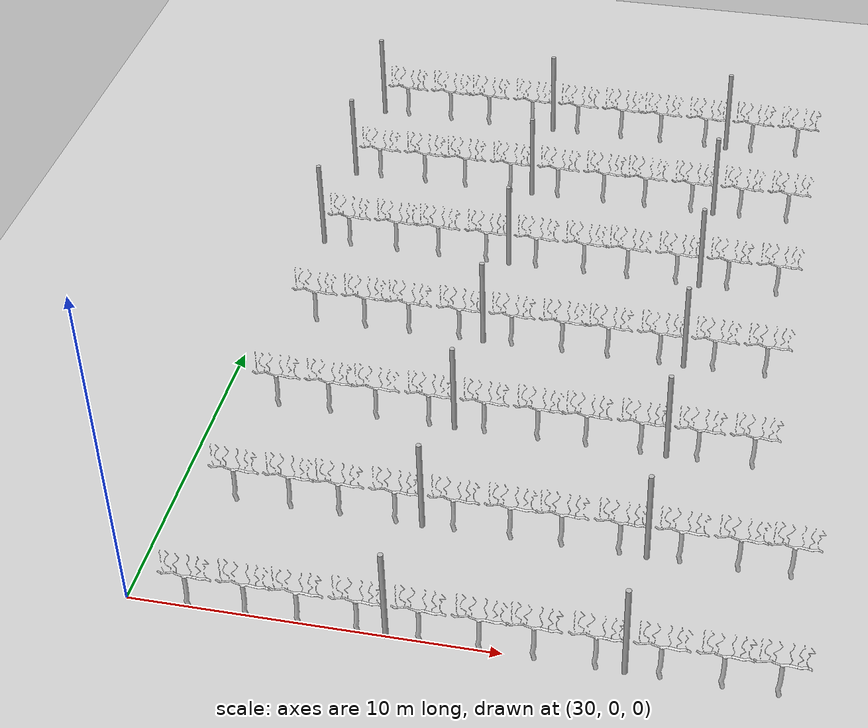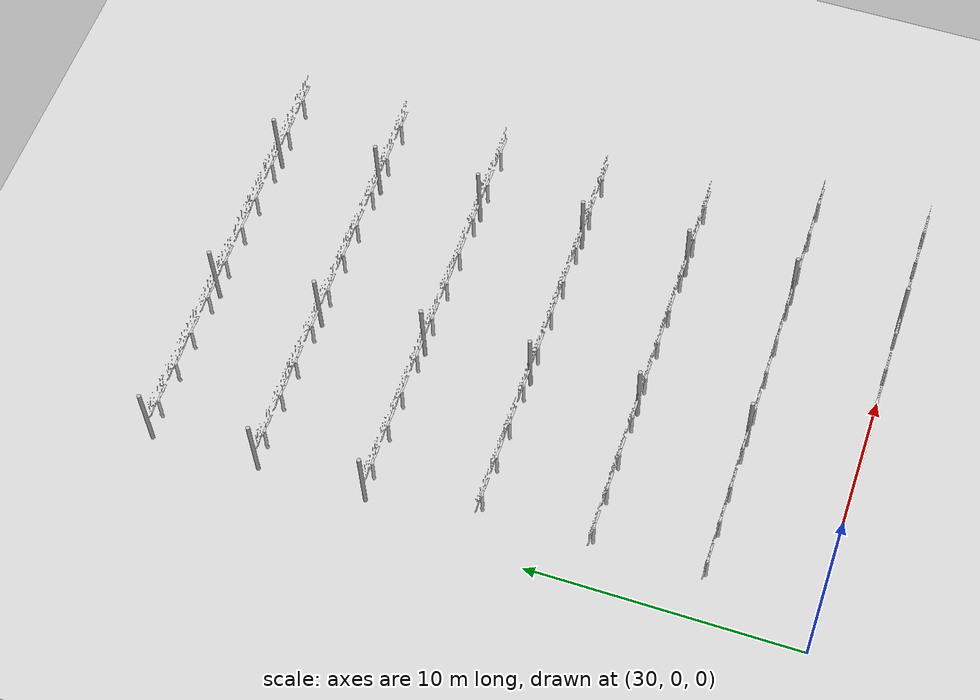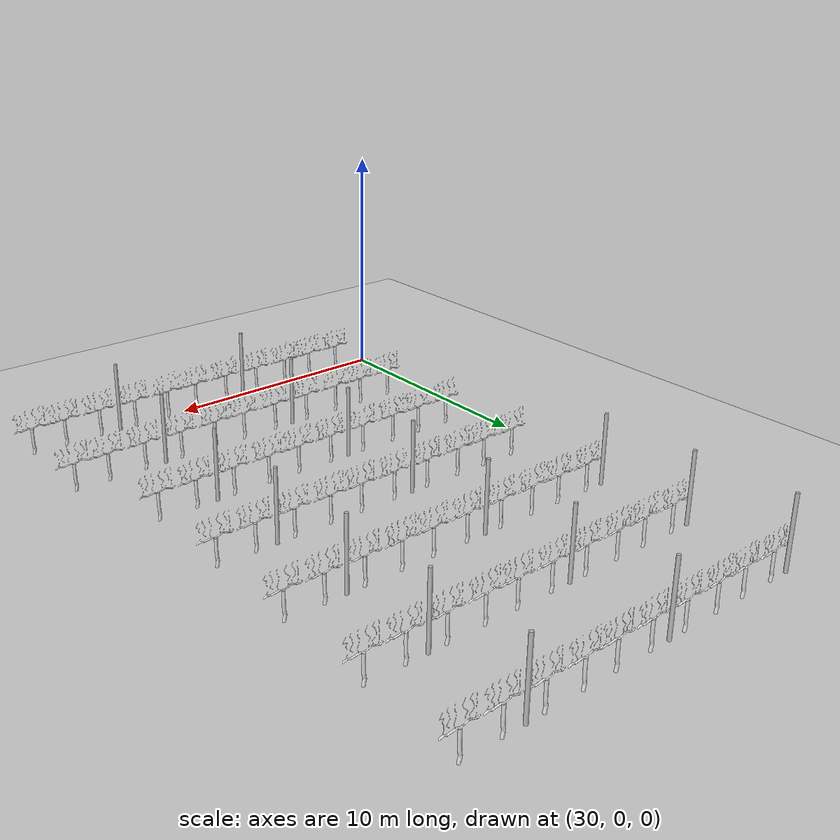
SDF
<sdf version="1.7">
 <world name="default">
  <model name="ground_plane">
   <static>true</static>
   <link name="link">
    <collision name="collision">
     <geometry><plane><normal>0 0 1</normal><size>100 100</size></plane></geometry>
    </collision>
    <visual name="visual"><geometry><plane><normal>0 0 1</normal><size>100 100</size></plane></geometry></visual>
   </link>
  </model>
  <model name="vinya_1_palo_6_fila_1">
   <static>true</static>
   <pose>31.699999999999992 0.0 0 0 0 0</pose>
   <link name="link">
    <collision name="collision">
     <geometry><mesh><uri>file://models/vinya/meshes/vinya.dae</uri></mesh></geometry>
    </collision>
    <visual name="visual">
     <geometry><mesh><uri>file://models/vinya/meshes/vinya.dae</uri></mesh></geometry>
    </visual>
   </link>
  </model>
  <model name="vinya_2_palo_6_fila_1">
   <static>true</static>
   <pose>33.25999999999999 0.0 0 0 0 0</pose>
   <link name="link">
    <collision name="collision">
     <geometry><mesh><uri>file://models/vinya/meshes/vinya.dae</uri></mesh></geometry>
    </collision>
    <visual name="visual">
     <geometry><mesh><uri>file://models/vinya/meshes/vinya.dae</uri></mesh></geometry>
    </visual>
   </link>
  </model>
  <model name="vinya_3_palo_6_fila_1">
   <static>true</static>
   <pose>34.65999999999999 0.0 0 0 0 0</pose>
   <link name="link">
    <collision name="collision">
     <geometry><mesh><uri>file://models/vinya/meshes/vinya.dae</uri></mesh></geometry>
    </collision>
    <visual name="visual">
     <geometry><mesh><uri>file://models/vinya/meshes/vinya.dae</uri></mesh></geometry>
    </visual>
   </link>
  </model>
  <model name="vinya_4_palo_6_fila_1">
   <static>true</static>
   <pose>36.23499999999999 0.0 0 0 0 0</pose>
   <link name="link">
    <collision name="collision">
     <geometry><mesh><uri>file://models/vinya/meshes/vinya.dae</uri></mesh></geometry>
    </collision>
    <visual name="visual">
     <geometry><mesh><uri>file://models/vinya/meshes/vinya.dae</uri></mesh></geometry>
    </visual>
   </link>
  </model>
  <model name="unit_cylinder_fila_1_palo_7">
   <static>true</static>
   <pose>36.959999999999994 0.0 1.5 0 0 0</pose>
   <link name="link">
    <collision name="collision">
     <geometry><cylinder><radius>0.075</radius><length>3</length></cylinder></geometry>
    </collision>
    <visual name="visual">
     <geometry><cylinder><radius>0.075</radius><length>3</length></cylinder></geometry>
    </visual>
   </link>
  </model>
  <model name="vinya_1_palo_7_fila_1">
   <static>true</static>
   <pose>37.85999999999999 0.0 0 0 0 0</pose>
   <link name="link">
    <collision name="collision">
     <geometry><mesh><uri>file://models/vinya/meshes/vinya.dae</uri></mesh></geometry>
    </collision>
    <visual name="visual">
     <geometry><mesh><uri>file://models/vinya/meshes/vinya.dae</uri></mesh></geometry>
    </visual>
   </link>
  </model>
  <model name="vinya_2_palo_7_fila_1">
   <static>true</static>
   <pose>39.419999999999995 0.0 0 0 0 0</pose>
   <link name="link">
    <collision name="collision">
     <geometry><mesh><uri>file://models/vinya/meshes/vinya.dae</uri></mesh></geometry>
    </collision>
    <visual name="visual">
     <geometry><mesh><uri>file://models/vinya/meshes/vinya.dae</uri></mesh></geometry>
    </visual>
   </link>
  </model>
  <model name="vinya_3_palo_7_fila_1">
   <static>true</static>
   <pose>40.81999999999999 0.0 0 0 0 0</pose>
   <link name="link">
    <collision name="collision">
     <geometry><mesh><uri>file://models/vinya/meshes/vinya.dae</uri></mesh></geometry>
    </collision>
    <visual name="visual">
     <geometry><mesh><uri>file://models/vinya/meshes/vinya.dae</uri></mesh></geometry>
    </visual>
   </link>
  </model>
  <model name="vinya_4_palo_7_fila_1">
   <static>true</static>
   <pose>42.394999999999996 0.0 0 0 0 0</pose>
   <link name="link">
    <collision name="collision">
     <geometry><mesh><uri>file://models/vinya/meshes/vinya.dae</uri></mesh></geometry>
    </collision>
    <visual name="visual">
     <geometry><mesh><uri>file://models/vinya/meshes/vinya.dae</uri></mesh></geometry>
    </visual>
   </link>
  </model>
  <model name="unit_cylinder_fila_1_palo_8">
   <static>true</static>
   <pose>43.12 0.0 1.5 0 0 0</pose>
   <link name="link">
    <collision name="collision">
     <geometry><cylinder><radius>0.075</radius><length>3</length></cylinder></geometry>
    </collision>
    <visual name="visual">
     <geometry><cylinder><radius>0.075</radius><length>3</length></cylinder></geometry>
    </visual>
   </link>
  </model>
  <model name="vinya_1_palo_8_fila_1">
   <static>true</static>
   <pose>44.019999999999996 0.0 0 0 0 0</pose>
   <link name="link">
    <collision name="collision">
     <geometry><mesh><uri>file://models/vinya/meshes/vinya.dae</uri></mesh></geometry>
    </collision>
    <visual name="visual">
     <geometry><mesh><uri>file://models/vinya/meshes/vinya.dae</uri></mesh></geometry>
    </visual>
   </link>
  </model>
  <model name="vinya_2_palo_8_fila_1">
   <static>true</static>
   <pose>45.58 0.0 0 0 0 0</pose>
   <link name="link">
    <collision name="collision">
     <geometry><mesh><uri>file://models/vinya/meshes/vinya.dae</uri></mesh></geometry>
    </collision>
    <visual name="visual">
     <geometry><mesh><uri>file://models/vinya/meshes/vinya.dae</uri></mesh></geometry>
    </visual>
   </link>
  </model>
  <model name="vinya_3_palo_8_fila_1">
   <static>true</static>
   <pose>46.98 0.0 0 0 0 0</pose>
   <link name="link">
    <collision name="collision">
     <geometry><mesh><uri>file://models/vinya/meshes/vinya.dae</uri></mesh></geometry>
    </collision>
    <visual name="visual">
     <geometry><mesh><uri>file://models/vinya/meshes/vinya.dae</uri></mesh></geometry>
    </visual>
   </link>
  </model>
  <model name="vinya_1_palo_6_fila_2">
   <static>true</static>
   <pose>31.699999999999992 4.0 0 0 0 0</pose>
   <link name="link">
    <collision name="collision">
     <geometry><mesh><uri>file://models/vinya/meshes/vinya.dae</uri></mesh></geometry>
    </collision>
    <visual name="visual">
     <geometry><mesh><uri>file://models/vinya/meshes/vinya.dae</uri></mesh></geometry>
    </visual>
   </link>
  </model>
  <model name="vinya_2_palo_6_fila_2">
   <static>true</static>
   <pose>33.25999999999999 4.0 0 0 0 0</pose>
   <link name="link">
    <collision name="collision">
     <geometry><mesh><uri>file://models/vinya/meshes/vinya.dae</uri></mesh></geometry>
    </collision>
    <visual name="visual">
     <geometry><mesh><uri>file://models/vinya/meshes/vinya.dae</uri></mesh></geometry>
    </visual>
   </link>
  </model>
  <model name="vinya_3_palo_6_fila_2">
   <static>true</static>
   <pose>34.65999999999999 4.0 0 0 0 0</pose>
   <link name="link">
    <collision name="collision">
     <geometry><mesh><uri>file://models/vinya/meshes/vinya.dae</uri></mesh></geometry>
    </collision>
    <visual name="visual">
     <geometry><mesh><uri>file://models/vinya/meshes/vinya.dae</uri></mesh></geometry>
    </visual>
   </link>
  </model>
  <model name="vinya_4_palo_6_fila_2">
   <static>true</static>
   <pose>36.23499999999999 4.0 0 0 0 0</pose>
   <link name="link">
    <collision name="collision">
     <geometry><mesh><uri>file://models/vinya/meshes/vinya.dae</uri></mesh></geometry>
    </collision>
    <visual name="visual">
     <geometry><mesh><uri>file://models/vinya/meshes/vinya.dae</uri></mesh></geometry>
    </visual>
   </link>
  </model>
  <model name="unit_cylinder_fila_2_palo_7">
   <static>true</static>
   <pose>36.959999999999994 4.0 1.5 0 0 0</pose>
   <link name="link">
    <collision name="collision">
     <geometry><cylinder><radius>0.075</radius><length>3</length></cylinder></geometry>
    </collision>
    <visual name="visual">
     <geometry><cylinder><radius>0.075</radius><length>3</length></cylinder></geometry>
    </visual>
   </link>
  </model>
  <model name="vinya_1_palo_7_fila_2">
   <static>true</static>
   <pose>37.85999999999999 4.0 0 0 0 0</pose>
   <link name="link">
    <collision name="collision">
     <geometry><mesh><uri>file://models/vinya/meshes/vinya.dae</uri></mesh></geometry>
    </collision>
    <visual name="visual">
     <geometry><mesh><uri>file://models/vinya/meshes/vinya.dae</uri></mesh></geometry>
    </visual>
   </link>
  </model>
  <model name="vinya_2_palo_7_fila_2">
   <static>true</static>
   <pose>39.419999999999995 4.0 0 0 0 0</pose>
   <link name="link">
    <collision name="collision">
     <geometry><mesh><uri>file://models/vinya/meshes/vinya.dae</uri></mesh></geometry>
    </collision>
    <visual name="visual">
     <geometry><mesh><uri>file://models/vinya/meshes/vinya.dae</uri></mesh></geometry>
    </visual>
   </link>
  </model>
  <model name="vinya_3_palo_7_fila_2">
   <static>true</static>
   <pose>40.81999999999999 4.0 0 0 0 0</pose>
   <link name="link">
    <collision name="collision">
     <geometry><mesh><uri>file://models/vinya/meshes/vinya.dae</uri></mesh></geometry>
    </collision>
    <visual name="visual">
     <geometry><mesh><uri>file://models/vinya/meshes/vinya.dae</uri></mesh></geometry>
    </visual>
   </link>
  </model>
  <model name="vinya_4_palo_7_fila_2">
   <static>true</static>
   <pose>42.394999999999996 4.0 0 0 0 0</pose>
   <link name="link">
    <collision name="collision">
     <geometry><mesh><uri>file://models/vinya/meshes/vinya.dae</uri></mesh></geometry>
    </collision>
    <visual name="visual">
     <geometry><mesh><uri>file://models/vinya/meshes/vinya.dae</uri></mesh></geometry>
    </visual>
   </link>
  </model>
  <model name="unit_cylinder_fila_2_palo_8">
   <static>true</static>
   <pose>43.12 4.0 1.5 0 0 0</pose>
   <link name="link">
    <collision name="collision">
     <geometry><cylinder><radius>0.075</radius><length>3</length></cylinder></geometry>
    </collision>
    <visual name="visual">
     <geometry><cylinder><radius>0.075</radius><length>3</length></cylinder></geometry>
    </visual>
   </link>
  </model>
  <model name="vinya_1_palo_8_fila_2">
   <static>true</static>
   <pose>44.019999999999996 4.0 0 0 0 0</pose>
   <link name="link">
    <collision name="collision">
     <geometry><mesh><uri>file://models/vinya/meshes/vinya.dae</uri></mesh></geometry>
    </collision>
    <visual name="visual">
     <geometry><mesh><uri>file://models/vinya/meshes/vinya.dae</uri></mesh></geometry>
    </visual>
   </link>
  </model>
  <model name="vinya_2_palo_8_fila_2">
   <static>true</static>
   <pose>45.58 4.0 0 0 0 0</pose>
   <link name="link">
    <collision name="collision">
     <geometry><mesh><uri>file://models/vinya/meshes/vinya.dae</uri></mesh></geometry>
    </collision>
    <visual name="visual">
     <geometry><mesh><uri>file://models/vinya/meshes/vinya.dae</uri></mesh></geometry>
    </visual>
   </link>
  </model>
  <model name="vinya_3_palo_8_fila_2">
   <static>true</static>
   <pose>46.98 4.0 0 0 0 0</pose>
   <link name="link">
    <collision name="collision">
     <geometry><mesh><uri>file://models/vinya/meshes/vinya.dae</uri></mesh></geometry>
    </collision>
    <visual name="visual">
     <geometry><mesh><uri>file://models/vinya/meshes/vinya.dae</uri></mesh></geometry>
    </visual>
   </link>
  </model>
  <model name="vinya_1_palo_6_fila_3">
   <static>true</static>
   <pose>31.699999999999992 8.0 0 0 0 0</pose>
   <link name="link">
    <collision name="collision">
     <geometry><mesh><uri>file://models/vinya/meshes/vinya.dae</uri></mesh></geometry>
    </collision>
    <visual name="visual">
     <geometry><mesh><uri>file://models/vinya/meshes/vinya.dae</uri></mesh></geometry>
    </visual>
   </link>
  </model>
  <model name="vinya_2_palo_6_fila_3">
   <static>true</static>
   <pose>33.25999999999999 8.0 0 0 0 0</pose>
   <link name="link">
    <collision name="collision">
     <geometry><mesh><uri>file://models/vinya/meshes/vinya.dae</uri></mesh></geometry>
    </collision>
    <visual name="visual">
     <geometry><mesh><uri>file://models/vinya/meshes/vinya.dae</uri></mesh></geometry>
    </visual>
   </link>
  </model>
  <model name="vinya_3_palo_6_fila_3">
   <static>true</static>
   <pose>34.65999999999999 8.0 0 0 0 0</pose>
   <link name="link">
    <collision name="collision">
     <geometry><mesh><uri>file://models/vinya/meshes/vinya.dae</uri></mesh></geometry>
    </collision>
    <visual name="visual">
     <geometry><mesh><uri>file://models/vinya/meshes/vinya.dae</uri></mesh></geometry>
    </visual>
   </link>
  </model>
  <model name="vinya_4_palo_6_fila_3">
   <static>true</static>
   <pose>36.23499999999999 8.0 0 0 0 0</pose>
   <link name="link">
    <collision name="collision">
     <geometry><mesh><uri>file://models/vinya/meshes/vinya.dae</uri></mesh></geometry>
    </collision>
    <visual name="visual">
     <geometry><mesh><uri>file://models/vinya/meshes/vinya.dae</uri></mesh></geometry>
    </visual>
   </link>
  </model>
  <model name="unit_cylinder_fila_3_palo_7">
   <static>true</static>
   <pose>36.959999999999994 8.0 1.5 0 0 0</pose>
   <link name="link">
    <collision name="collision">
     <geometry><cylinder><radius>0.075</radius><length>3</length></cylinder></geometry>
    </collision>
    <visual name="visual">
     <geometry><cylinder><radius>0.075</radius><length>3</length></cylinder></geometry>
    </visual>
   </link>
  </model>
  <model name="vinya_1_palo_7_fila_3">
   <static>true</static>
   <pose>37.85999999999999 8.0 0 0 0 0</pose>
   <link name="link">
    <collision name="collision">
     <geometry><mesh><uri>file://models/vinya/meshes/vinya.dae</uri></mesh></geometry>
    </collision>
    <visual name="visual">
     <geometry><mesh><uri>file://models/vinya/meshes/vinya.dae</uri></mesh></geometry>
    </visual>
   </link>
  </model>
  <model name="vinya_2_palo_7_fila_3">
   <static>true</static>
   <pose>39.419999999999995 8.0 0 0 0 0</pose>
   <link name="link">
    <collision name="collision">
     <geometry><mesh><uri>file://models/vinya/meshes/vinya.dae</uri></mesh></geometry>
    </collision>
    <visual name="visual">
     <geometry><mesh><uri>file://models/vinya/meshes/vinya.dae</uri></mesh></geometry>
    </visual>
   </link>
  </model>
  <model name="vinya_3_palo_7_fila_3">
   <static>true</static>
   <pose>40.81999999999999 8.0 0 0 0 0</pose>
   <link name="link">
    <collision name="collision">
     <geometry><mesh><uri>file://models/vinya/meshes/vinya.dae</uri></mesh></geometry>
    </collision>
    <visual name="visual">
     <geometry><mesh><uri>file://models/vinya/meshes/vinya.dae</uri></mesh></geometry>
    </visual>
   </link>
  </model>
  <model name="vinya_4_palo_7_fila_3">
   <static>true</static>
   <pose>42.394999999999996 8.0 0 0 0 0</pose>
   <link name="link">
    <collision name="collision">
     <geometry><mesh><uri>file://models/vinya/meshes/vinya.dae</uri></mesh></geometry>
    </collision>
    <visual name="visual">
     <geometry><mesh><uri>file://models/vinya/meshes/vinya.dae</uri></mesh></geometry>
    </visual>
   </link>
  </model>
  <model name="unit_cylinder_fila_3_palo_8">
   <static>true</static>
   <pose>43.12 8.0 1.5 0 0 0</pose>
   <link name="link">
    <collision name="collision">
     <geometry><cylinder><radius>0.075</radius><length>3</length></cylinder></geometry>
    </collision>
    <visual name="visual">
     <geometry><cylinder><radius>0.075</radius><length>3</length></cylinder></geometry>
    </visual>
   </link>
  </model>
  <model name="vinya_1_palo_8_fila_3">
   <static>true</static>
   <pose>44.019999999999996 8.0 0 0 0 0</pose>
   <link name="link">
    <collision name="collision">
     <geometry><mesh><uri>file://models/vinya/meshes/vinya.dae</uri></mesh></geometry>
    </collision>
    <visual name="visual">
     <geometry><mesh><uri>file://models/vinya/meshes/vinya.dae</uri></mesh></geometry>
    </visual>
   </link>
  </model>
  <model name="vinya_2_palo_8_fila_3">
   <static>true</static>
   <pose>45.58 8.0 0 0 0 0</pose>
   <link name="link">
    <collision name="collision">
     <geometry><mesh><uri>file://models/vinya/meshes/vinya.dae</uri></mesh></geometry>
    </collision>
    <visual name="visual">
     <geometry><mesh><uri>file://models/vinya/meshes/vinya.dae</uri></mesh></geometry>
    </visual>
   </link>
  </model>
  <model name="vinya_1_palo_6_fila_4">
   <static>true</static>
   <pose>31.699999999999992 12.0 0 0 0 0</pose>
   <link name="link">
    <collision name="collision">
     <geometry><mesh><uri>file://models/vinya/meshes/vinya.dae</uri></mesh></geometry>
    </collision>
    <visual name="visual">
     <geometry><mesh><uri>file://models/vinya/meshes/vinya.dae</uri></mesh></geometry>
    </visual>
   </link>
  </model>
  <model name="vinya_2_palo_6_fila_4">
   <static>true</static>
   <pose>33.25999999999999 12.0 0 0 0 0</pose>
   <link name="link">
    <collision name="collision">
     <geometry><mesh><uri>file://models/vinya/meshes/vinya.dae</uri></mesh></geometry>
    </collision>
    <visual name="visual">
     <geometry><mesh><uri>file://models/vinya/meshes/vinya.dae</uri></mesh></geometry>
    </visual>
   </link>
  </model>
  <model name="vinya_3_palo_6_fila_4">
   <static>true</static>
   <pose>34.65999999999999 12.0 0 0 0 0</pose>
   <link name="link">
    <collision name="collision">
     <geometry><mesh><uri>file://models/vinya/meshes/vinya.dae</uri></mesh></geometry>
    </collision>
    <visual name="visual">
     <geometry><mesh><uri>file://models/vinya/meshes/vinya.dae</uri></mesh></geometry>
    </visual>
   </link>
  </model>
  <model name="vinya_4_palo_6_fila_4">
   <static>true</static>
   <pose>36.23499999999999 12.0 0 0 0 0</pose>
   <link name="link">
    <collision name="collision">
     <geometry><mesh><uri>file://models/vinya/meshes/vinya.dae</uri></mesh></geometry>
    </collision>
    <visual name="visual">
     <geometry><mesh><uri>file://models/vinya/meshes/vinya.dae</uri></mesh></geometry>
    </visual>
   </link>
  </model>
  <model name="unit_cylinder_fila_4_palo_7">
   <static>true</static>
   <pose>36.959999999999994 12.0 1.5 0 0 0</pose>
   <link name="link">
    <collision name="collision">
     <geometry><cylinder><radius>0.075</radius><length>3</length></cylinder></geometry>
    </collision>
    <visual name="visual">
     <geometry><cylinder><radius>0.075</radius><length>3</length></cylinder></geometry>
    </visual>
   </link>
  </model>
  <model name="vinya_1_palo_7_fila_4">
   <static>true</static>
   <pose>37.85999999999999 12.0 0 0 0 0</pose>
   <link name="link">
    <collision name="collision">
     <geometry><mesh><uri>file://models/vinya/meshes/vinya.dae</uri></mesh></geometry>
    </collision>
    <visual name="visual">
     <geometry><mesh><uri>file://models/vinya/meshes/vinya.dae</uri></mesh></geometry>
    </visual>
   </link>
  </model>
  <model name="vinya_2_palo_7_fila_4">
   <static>true</static>
   <pose>39.419999999999995 12.0 0 0 0 0</pose>
   <link name="link">
    <collision name="collision">
     <geometry><mesh><uri>file://models/vinya/meshes/vinya.dae</uri></mesh></geometry>
    </collision>
    <visual name="visual">
     <geometry><mesh><uri>file://models/vinya/meshes/vinya.dae</uri></mesh></geometry>
    </visual>
   </link>
  </model>
  <model name="vinya_3_palo_7_fila_4">
   <static>true</static>
   <pose>40.81999999999999 12.0 0 0 0 0</pose>
   <link name="link">
    <collision name="collision">
     <geometry><mesh><uri>file://models/vinya/meshes/vinya.dae</uri></mesh></geometry>
    </collision>
    <visual name="visual">
     <geometry><mesh><uri>file://models/vinya/meshes/vinya.dae</uri></mesh></geometry>
    </visual>
   </link>
  </model>
  <model name="vinya_4_palo_7_fila_4">
   <static>true</static>
   <pose>42.394999999999996 12.0 0 0 0 0</pose>
   <link name="link">
    <collision name="collision">
     <geometry><mesh><uri>file://models/vinya/meshes/vinya.dae</uri></mesh></geometry>
    </collision>
    <visual name="visual">
     <geometry><mesh><uri>file://models/vinya/meshes/vinya.dae</uri></mesh></geometry>
    </visual>
   </link>
  </model>
  <model name="unit_cylinder_fila_4_palo_8">
   <static>true</static>
   <pose>43.12 12.0 1.5 0 0 0</pose>
   <link name="link">
    <collision name="collision">
     <geometry><cylinder><radius>0.075</radius><length>3</length></cylinder></geometry>
    </collision>
    <visual name="visual">
     <geometry><cylinder><radius>0.075</radius><length>3</length></cylinder></geometry>
    </visual>
   </link>
  </model>
  <model name="vinya_1_palo_8_fila_4">
   <static>true</static>
   <pose>44.019999999999996 12.0 0 0 0 0</pose>
   <link name="link">
    <collision name="collision">
     <geometry><mesh><uri>file://models/vinya/meshes/vinya.dae</uri></mesh></geometry>
    </collision>
    <visual name="visual">
     <geometry><mesh><uri>file://models/vinya/meshes/vinya.dae</uri></mesh></geometry>
    </visual>
   </link>
  </model>
  <model name="vinya_2_palo_8_fila_4">
   <static>true</static>
   <pose>45.58 12.0 0 0 0 0</pose>
   <link name="link">
    <collision name="collision">
     <geometry><mesh><uri>file://models/vinya/meshes/vinya.dae</uri></mesh></geometry>
    </collision>
    <visual name="visual">
     <geometry><mesh><uri>file://models/vinya/meshes/vinya.dae</uri></mesh></geometry>
    </visual>
   </link>
  </model>
  <model name="unit_cylinder_fila_5_palo_6">
   <static>true</static>
   <pose>30.799999999999994 16.0 1.5 0 0 0</pose>
   <link name="link">
    <collision name="collision">
     <geometry><cylinder><radius>0.075</radius><length>3</length></cylinder></geometry>
    </collision>
    <visual name="visual">
     <geometry><cylinder><radius>0.075</radius><length>3</length></cylinder></geometry>
    </visual>
   </link>
  </model>
  <model name="vinya_1_palo_6_fila_5">
   <static>true</static>
   <pose>31.699999999999992 16.0 0 0 0 0</pose>
   <link name="link">
    <collision name="collision">
     <geometry><mesh><uri>file://models/vinya/meshes/vinya.dae</uri></mesh></geometry>
    </collision>
    <visual name="visual">
     <geometry><mesh><uri>file://models/vinya/meshes/vinya.dae</uri></mesh></geometry>
    </visual>
   </link>
  </model>
  <model name="vinya_2_palo_6_fila_5">
   <static>true</static>
   <pose>33.25999999999999 16.0 0 0 0 0</pose>
   <link name="link">
    <collision name="collision">
     <geometry><mesh><uri>file://models/vinya/meshes/vinya.dae</uri></mesh></geometry>
    </collision>
    <visual name="visual">
     <geometry><mesh><uri>file://models/vinya/meshes/vinya.dae</uri></mesh></geometry>
    </visual>
   </link>
  </model>
  <model name="vinya_3_palo_6_fila_5">
   <static>true</static>
   <pose>34.65999999999999 16.0 0 0 0 0</pose>
   <link name="link">
    <collision name="collision">
     <geometry><mesh><uri>file://models/vinya/meshes/vinya.dae</uri></mesh></geometry>
    </collision>
    <visual name="visual">
     <geometry><mesh><uri>file://models/vinya/meshes/vinya.dae</uri></mesh></geometry>
    </visual>
   </link>
  </model>
  <model name="vinya_4_palo_6_fila_5">
   <static>true</static>
   <pose>36.23499999999999 16.0 0 0 0 0</pose>
   <link name="link">
    <collision name="collision">
     <geometry><mesh><uri>file://models/vinya/meshes/vinya.dae</uri></mesh></geometry>
    </collision>
    <visual name="visual">
     <geometry><mesh><uri>file://models/vinya/meshes/vinya.dae</uri></mesh></geometry>
    </visual>
   </link>
  </model>
  <model name="unit_cylinder_fila_5_palo_7">
   <static>true</static>
   <pose>36.959999999999994 16.0 1.5 0 0 0</pose>
   <link name="link">
    <collision name="collision">
     <geometry><cylinder><radius>0.075</radius><length>3</length></cylinder></geometry>
    </collision>
    <visual name="visual">
     <geometry><cylinder><radius>0.075</radius><length>3</length></cylinder></geometry>
    </visual>
   </link>
  </model>
  <model name="vinya_1_palo_7_fila_5">
   <static>true</static>
   <pose>37.85999999999999 16.0 0 0 0 0</pose>
   <link name="link">
    <collision name="collision">
     <geometry><mesh><uri>file://models/vinya/meshes/vinya.dae</uri></mesh></geometry>
    </collision>
    <visual name="visual">
     <geometry><mesh><uri>file://models/vinya/meshes/vinya.dae</uri></mesh></geometry>
    </visual>
   </link>
  </model>
  <model name="vinya_2_palo_7_fila_5">
   <static>true</static>
   <pose>39.419999999999995 16.0 0 0 0 0</pose>
   <link name="link">
    <collision name="collision">
     <geometry><mesh><uri>file://models/vinya/meshes/vinya.dae</uri></mesh></geometry>
    </collision>
    <visual name="visual">
     <geometry><mesh><uri>file://models/vinya/meshes/vinya.dae</uri></mesh></geometry>
    </visual>
   </link>
  </model>
  <model name="vinya_3_palo_7_fila_5">
   <static>true</static>
   <pose>40.81999999999999 16.0 0 0 0 0</pose>
   <link name="link">
    <collision name="collision">
     <geometry><mesh><uri>file://models/vinya/meshes/vinya.dae</uri></mesh></geometry>
    </collision>
    <visual name="visual">
     <geometry><mesh><uri>file://models/vinya/meshes/vinya.dae</uri></mesh></geometry>
    </visual>
   </link>
  </model>
  <model name="vinya_4_palo_7_fila_5">
   <static>true</static>
   <pose>42.394999999999996 16.0 0 0 0 0</pose>
   <link name="link">
    <collision name="collision">
     <geometry><mesh><uri>file://models/vinya/meshes/vinya.dae</uri></mesh></geometry>
    </collision>
    <visual name="visual">
     <geometry><mesh><uri>file://models/vinya/meshes/vinya.dae</uri></mesh></geometry>
    </visual>
   </link>
  </model>
  <model name="unit_cylinder_fila_5_palo_8">
   <static>true</static>
   <pose>43.12 16.0 1.5 0 0 0</pose>
   <link name="link">
    <collision name="collision">
     <geometry><cylinder><radius>0.075</radius><length>3</length></cylinder></geometry>
    </collision>
    <visual name="visual">
     <geometry><cylinder><radius>0.075</radius><length>3</length></cylinder></geometry>
    </visual>
   </link>
  </model>
  <model name="vinya_1_palo_8_fila_5">
   <static>true</static>
   <pose>44.019999999999996 16.0 0 0 0 0</pose>
   <link name="link">
    <collision name="collision">
     <geometry><mesh><uri>file://models/vinya/meshes/vinya.dae</uri></mesh></geometry>
    </collision>
    <visual name="visual">
     <geometry><mesh><uri>file://models/vinya/meshes/vinya.dae</uri></mesh></geometry>
    </visual>
   </link>
  </model>
  <model name="vinya_2_palo_8_fila_5">
   <static>true</static>
   <pose>45.58 16.0 0 0 0 0</pose>
   <link name="link">
    <collision name="collision">
     <geometry><mesh><uri>file://models/vinya/meshes/vinya.dae</uri></mesh></geometry>
    </collision>
    <visual name="visual">
     <geometry><mesh><uri>file://models/vinya/meshes/vinya.dae</uri></mesh></geometry>
    </visual>
   </link>
  </model>
  <model name="unit_cylinder_fila_6_palo_6">
   <static>true</static>
   <pose>30.799999999999994 20.0 1.5 0 0 0</pose>
   <link name="link">
    <collision name="collision">
     <geometry><cylinder><radius>0.075</radius><length>3</length></cylinder></geometry>
    </collision>
    <visual name="visual">
     <geometry><cylinder><radius>0.075</radius><length>3</length></cylinder></geometry>
    </visual>
   </link>
  </model>
  <model name="vinya_1_palo_6_fila_6">
   <static>true</static>
   <pose>31.699999999999992 20.0 0 0 0 0</pose>
   <link name="link">
    <collision name="collision">
     <geometry><mesh><uri>file://models/vinya/meshes/vinya.dae</uri></mesh></geometry>
    </collision>
    <visual name="visual">
     <geometry><mesh><uri>file://models/vinya/meshes/vinya.dae</uri></mesh></geometry>
    </visual>
   </link>
  </model>
  <model name="vinya_2_palo_6_fila_6">
   <static>true</static>
   <pose>33.25999999999999 20.0 0 0 0 0</pose>
   <link name="link">
    <collision name="collision">
     <geometry><mesh><uri>file://models/vinya/meshes/vinya.dae</uri></mesh></geometry>
    </collision>
    <visual name="visual">
     <geometry><mesh><uri>file://models/vinya/meshes/vinya.dae</uri></mesh></geometry>
    </visual>
   </link>
  </model>
  <model name="vinya_3_palo_6_fila_6">
   <static>true</static>
   <pose>34.65999999999999 20.0 0 0 0 0</pose>
   <link name="link">
    <collision name="collision">
     <geometry><mesh><uri>file://models/vinya/meshes/vinya.dae</uri></mesh></geometry>
    </collision>
    <visual name="visual">
     <geometry><mesh><uri>file://models/vinya/meshes/vinya.dae</uri></mesh></geometry>
    </visual>
   </link>
  </model>
  <model name="vinya_4_palo_6_fila_6">
   <static>true</static>
   <pose>36.23499999999999 20.0 0 0 0 0</pose>
   <link name="link">
    <collision name="collision">
     <geometry><mesh><uri>file://models/vinya/meshes/vinya.dae</uri></mesh></geometry>
    </collision>
    <visual name="visual">
     <geometry><mesh><uri>file://models/vinya/meshes/vinya.dae</uri></mesh></geometry>
    </visual>
   </link>
  </model>
  <model name="unit_cylinder_fila_6_palo_7">
   <static>true</static>
   <pose>36.959999999999994 20.0 1.5 0 0 0</pose>
   <link name="link">
    <collision name="collision">
     <geometry><cylinder><radius>0.075</radius><length>3</length></cylinder></geometry>
    </collision>
    <visual name="visual">
     <geometry><cylinder><radius>0.075</radius><length>3</length></cylinder></geometry>
    </visual>
   </link>
  </model>
  <model name="vinya_1_palo_7_fila_6">
   <static>true</static>
   <pose>37.85999999999999 20.0 0 0 0 0</pose>
   <link name="link">
    <collision name="collision">
     <geometry><mesh><uri>file://models/vinya/meshes/vinya.dae</uri></mesh></geometry>
    </collision>
    <visual name="visual">
     <geometry><mesh><uri>file://models/vinya/meshes/vinya.dae</uri></mesh></geometry>
    </visual>
   </link>
  </model>
  <model name="vinya_2_palo_7_fila_6">
   <static>true</static>
   <pose>39.419999999999995 20.0 0 0 0 0</pose>
   <link name="link">
    <collision name="collision">
     <geometry><mesh><uri>file://models/vinya/meshes/vinya.dae</uri></mesh></geometry>
    </collision>
    <visual name="visual">
     <geometry><mesh><uri>file://models/vinya/meshes/vinya.dae</uri></mesh></geometry>
    </visual>
   </link>
  </model>
  <model name="vinya_3_palo_7_fila_6">
   <static>true</static>
   <pose>40.81999999999999 20.0 0 0 0 0</pose>
   <link name="link">
    <collision name="collision">
     <geometry><mesh><uri>file://models/vinya/meshes/vinya.dae</uri></mesh></geometry>
    </collision>
    <visual name="visual">
     <geometry><mesh><uri>file://models/vinya/meshes/vinya.dae</uri></mesh></geometry>
    </visual>
   </link>
  </model>
  <model name="vinya_4_palo_7_fila_6">
   <static>true</static>
   <pose>42.394999999999996 20.0 0 0 0 0</pose>
   <link name="link">
    <collision name="collision">
     <geometry><mesh><uri>file://models/vinya/meshes/vinya.dae</uri></mesh></geometry>
    </collision>
    <visual name="visual">
     <geometry><mesh><uri>file://models/vinya/meshes/vinya.dae</uri></mesh></geometry>
    </visual>
   </link>
  </model>
  <model name="unit_cylinder_fila_6_palo_8">
   <static>true</static>
   <pose>43.12 20.0 1.5 0 0 0</pose>
   <link name="link">
    <collision name="collision">
     <geometry><cylinder><radius>0.075</radius><length>3</length></cylinder></geometry>
    </collision>
    <visual name="visual">
     <geometry><cylinder><radius>0.075</radius><length>3</length></cylinder></geometry>
    </visual>
   </link>
  </model>
  <model name="vinya_1_palo_8_fila_6">
   <static>true</static>
   <pose>44.019999999999996 20.0 0 0 0 0</pose>
   <link name="link">
    <collision name="collision">
     <geometry><mesh><uri>file://models/vinya/meshes/vinya.dae</uri></mesh></geometry>
    </collision>
    <visual name="visual">
     <geometry><mesh><uri>file://models/vinya/meshes/vinya.dae</uri></mesh></geometry>
    </visual>
   </link>
  </model>
  <model name="vinya_2_palo_8_fila_6">
   <static>true</static>
   <pose>45.58 20.0 0 0 0 0</pose>
   <link name="link">
    <collision name="collision">
     <geometry><mesh><uri>file://models/vinya/meshes/vinya.dae</uri></mesh></geometry>
    </collision>
    <visual name="visual">
     <geometry><mesh><uri>file://models/vinya/meshes/vinya.dae</uri></mesh></geometry>
    </visual>
   </link>
  </model>
  <model name="unit_cylinder_fila_7_palo_6">
   <static>true</static>
   <pose>30.799999999999994 24.0 1.5 0 0 0</pose>
   <link name="link">
    <collision name="collision">
     <geometry><cylinder><radius>0.075</radius><length>3</length></cylinder></geometry>
    </collision>
    <visual name="visual">
     <geometry><cylinder><radius>0.075</radius><length>3</length></cylinder></geometry>
    </visual>
   </link>
  </model>
  <model name="vinya_1_palo_6_fila_7">
   <static>true</static>
   <pose>31.699999999999992 24.0 0 0 0 0</pose>
   <link name="link">
    <collision name="collision">
     <geometry><mesh><uri>file://models/vinya/meshes/vinya.dae</uri></mesh></geometry>
    </collision>
    <visual name="visual">
     <geometry><mesh><uri>file://models/vinya/meshes/vinya.dae</uri></mesh></geometry>
    </visual>
   </link>
  </model>
  <model name="vinya_2_palo_6_fila_7">
   <static>true</static>
   <pose>33.25999999999999 24.0 0 0 0 0</pose>
   <link name="link">
    <collision name="collision">
     <geometry><mesh><uri>file://models/vinya/meshes/vinya.dae</uri></mesh></geometry>
    </collision>
    <visual name="visual">
     <geometry><mesh><uri>file://models/vinya/meshes/vinya.dae</uri></mesh></geometry>
    </visual>
   </link>
  </model>
  <model name="vinya_3_palo_6_fila_7">
   <static>true</static>
   <pose>34.65999999999999 24.0 0 0 0 0</pose>
   <link name="link">
    <collision name="collision">
     <geometry><mesh><uri>file://models/vinya/meshes/vinya.dae</uri></mesh></geometry>
    </collision>
    <visual name="visual">
     <geometry><mesh><uri>file://models/vinya/meshes/vinya.dae</uri></mesh></geometry>
    </visual>
   </link>
  </model>
  <model name="vinya_4_palo_6_fila_7">
   <static>true</static>
   <pose>36.23499999999999 24.0 0 0 0 0</pose>
   <link name="link">
    <collision name="collision">
     <geometry><mesh><uri>file://models/vinya/meshes/vinya.dae</uri></mesh></geometry>
    </collision>
    <visual name="visual">
     <geometry><mesh><uri>file://models/vinya/meshes/vinya.dae</uri></mesh></geometry>
    </visual>
   </link>
  </model>
  <model name="unit_cylinder_fila_7_palo_7">
   <static>true</static>
   <pose>36.959999999999994 24.0 1.5 0 0 0</pose>
   <link name="link">
    <collision name="collision">
     <geometry><cylinder><radius>0.075</radius><length>3</length></cylinder></geometry>
    </collision>
    <visual name="visual">
     <geometry><cylinder><radius>0.075</radius><length>3</length></cylinder></geometry>
    </visual>
   </link>
  </model>
  <model name="vinya_1_palo_7_fila_7">
   <static>true</static>
   <pose>37.85999999999999 24.0 0 0 0 0</pose>
   <link name="link">
    <collision name="collision">
     <geometry><mesh><uri>file://models/vinya/meshes/vinya.dae</uri></mesh></geometry>
    </collision>
    <visual name="visual">
     <geometry><mesh><uri>file://models/vinya/meshes/vinya.dae</uri></mesh></geometry>
    </visual>
   </link>
  </model>
  <model name="vinya_2_palo_7_fila_7">
   <static>true</static>
   <pose>39.419999999999995 24.0 0 0 0 0</pose>
   <link name="link">
    <collision name="collision">
     <geometry><mesh><uri>file://models/vinya/meshes/vinya.dae</uri></mesh></geometry>
    </collision>
    <visual name="visual">
     <geometry><mesh><uri>file://models/vinya/meshes/vinya.dae</uri></mesh></geometry>
    </visual>
   </link>
  </model>
  <model name="vinya_3_palo_7_fila_7">
   <static>true</static>
   <pose>40.81999999999999 24.0 0 0 0 0</pose>
   <link name="link">
    <collision name="collision">
     <geometry><mesh><uri>file://models/vinya/meshes/vinya.dae</uri></mesh></geometry>
    </collision>
    <visual name="visual">
     <geometry><mesh><uri>file://models/vinya/meshes/vinya.dae</uri></mesh></geometry>
    </visual>
   </link>
  </model>
  <model name="vinya_4_palo_7_fila_7">
   <static>true</static>
   <pose>42.394999999999996 24.0 0 0 0 0</pose>
   <link name="link">
    <collision name="collision">
     <geometry><mesh><uri>file://models/vinya/meshes/vinya.dae</uri></mesh></geometry>
    </collision>
    <visual name="visual">
     <geometry><mesh><uri>file://models/vinya/meshes/vinya.dae</uri></mesh></geometry>
    </visual>
   </link>
  </model>
  <model name="unit_cylinder_fila_7_palo_8">
   <static>true</static>
   <pose>43.12 24.0 1.5 0 0 0</pose>
   <link name="link">
    <collision name="collision">
     <geometry><cylinder><radius>0.075</radius><length>3</length></cylinder></geometry>
    </collision>
    <visual name="visual">
     <geometry><cylinder><radius>0.075</radius><length>3</length></cylinder></geometry>
    </visual>
   </link>
  </model>
  <model name="vinya_1_palo_8_fila_7">
   <static>true</static>
   <pose>44.019999999999996 24.0 0 0 0 0</pose>
   <link name="link">
    <collision name="collision">
     <geometry><mesh><uri>file://models/vinya/meshes/vinya.dae</uri></mesh></geometry>
    </collision>
    <visual name="visual">
     <geometry><mesh><uri>file://models/vinya/meshes/vinya.dae</uri></mesh></geometry>
    </visual>
   </link>
  </model>
  <model name="vinya_2_palo_8_fila_7">
   <static>true</static>
   <pose>45.58 24.0 0 0 0 0</pose>
   <link name="link">
    <collision name="collision">
     <geometry><mesh><uri>file://models/vinya/meshes/vinya.dae</uri></mesh></geometry>
    </collision>
    <visual name="visual">
     <geometry><mesh><uri>file://models/vinya/meshes/vinya.dae</uri></mesh></geometry>
    </visual>
   </link>
  </model>
 </world>
</sdf>
